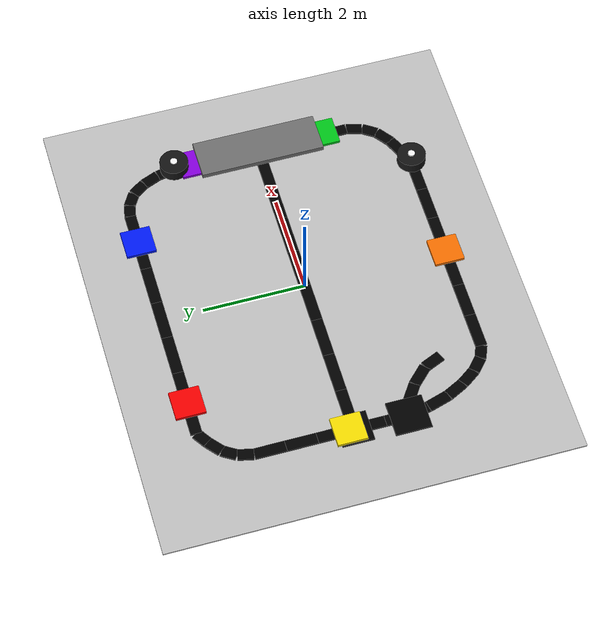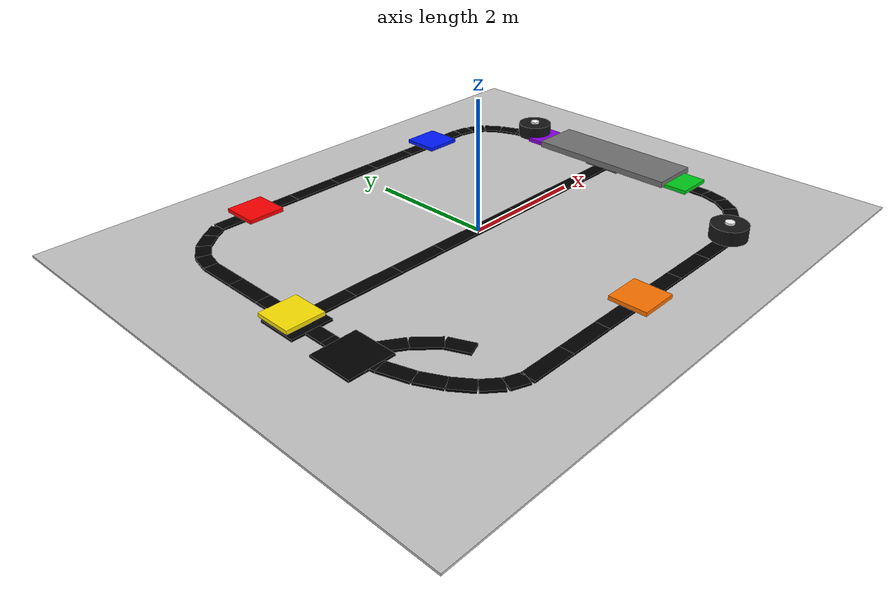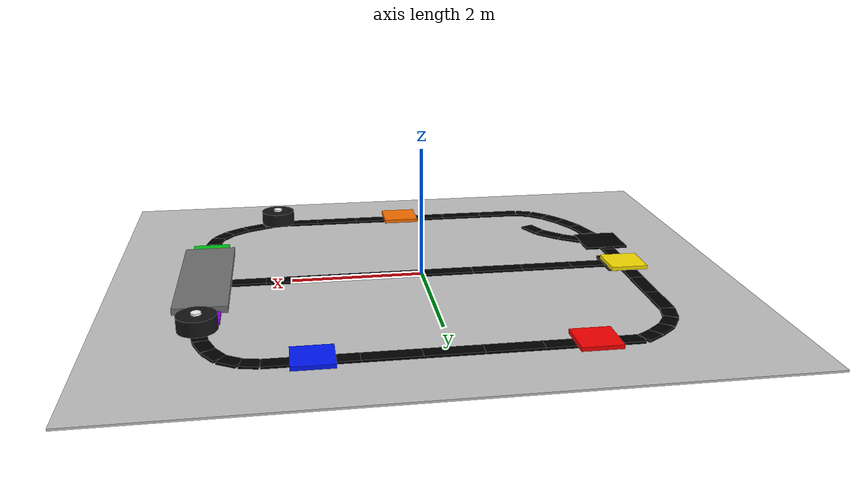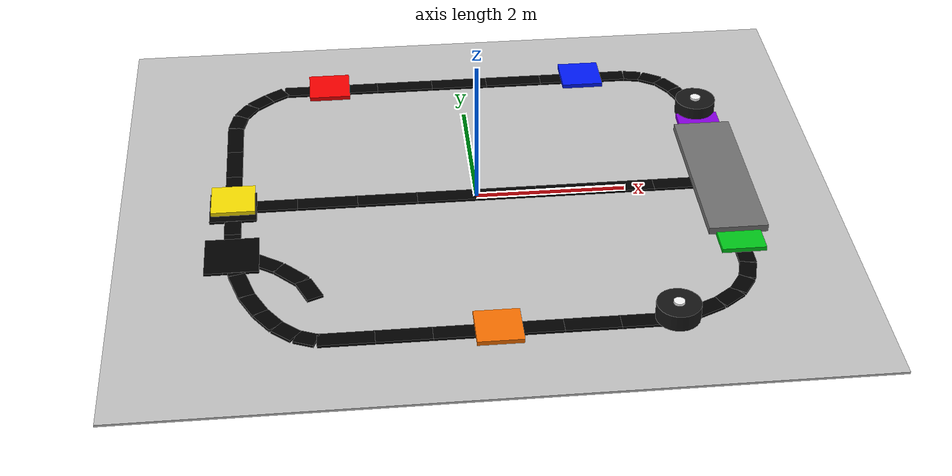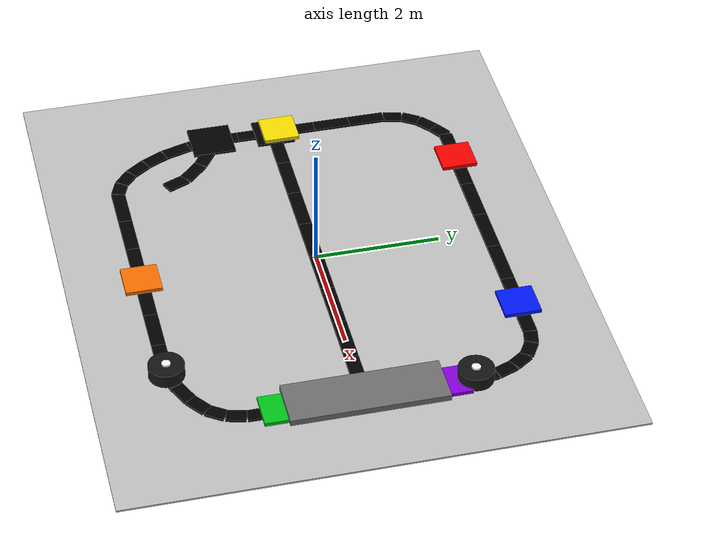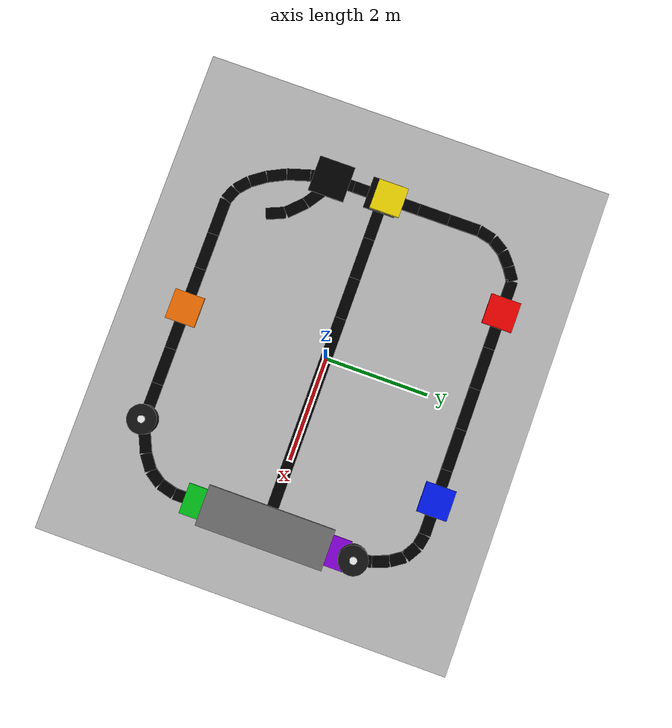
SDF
<?xml version="1.0" ?>
<sdf version="1.6">
  <world name="agv_factory_v3_curve_clean_map">

    <include>
      <uri>model://sun</uri>
    </include>

    <gui fullscreen="0">
      <camera name="user_camera">
        <pose>0 -0.2 10.8 0 1.5708 1.5708</pose>
        <view_controller>orbit</view_controller>
      </camera>
    </gui>

    <model name="factory_floor">
      <static>true</static>
      <pose>0.0000 0.0000 -0.0150 0 0 0.0000</pose>
      <link name="link">
        <collision name="collision">
          <geometry>
            <box>
              <size>9.5000 8.0000 0.0300</size>
            </box>
          </geometry>
        </collision>
        <visual name="visual">
          <geometry>
            <box>
              <size>9.5000 8.0000 0.0300</size>
            </box>
          </geometry>

          <material>
            <ambient>0.78 0.78 0.78 1</ambient>
            <diffuse>0.78 0.78 0.78 1</diffuse>
          </material>
        </visual>
      </link>
    </model>

    <model name="line_top_01">
      <static>true</static>
      <pose>-2.2250 2.8000 0.0175 0 0 0.0000</pose>
      <link name="link">
        <collision name="collision">
          <geometry>
            <box>
              <size>0.6500 0.2200 0.0350</size>
            </box>
          </geometry>
        </collision>
        <visual name="visual">
          <geometry>
            <box>
              <size>0.6500 0.2200 0.0350</size>
            </box>
          </geometry>

          <material>
            <ambient>0 0 0 1</ambient>
            <diffuse>0 0 0 1</diffuse>
          </material>
        </visual>
      </link>
    </model>

    <model name="line_top_02">
      <static>true</static>
      <pose>-1.5500 2.8000 0.0175 0 0 0.0000</pose>
      <link name="link">
        <collision name="collision">
          <geometry>
            <box>
              <size>0.7000 0.2200 0.0350</size>
            </box>
          </geometry>
        </collision>
        <visual name="visual">
          <geometry>
            <box>
              <size>0.7000 0.2200 0.0350</size>
            </box>
          </geometry>

          <material>
            <ambient>0 0 0 1</ambient>
            <diffuse>0 0 0 1</diffuse>
          </material>
        </visual>
      </link>
    </model>

    <model name="line_top_03">
      <static>true</static>
      <pose>-0.8000 2.8000 0.0175 0 0 0.0000</pose>
      <link name="link">
        <collision name="collision">
          <geometry>
            <box>
              <size>0.8000 0.2200 0.0350</size>
            </box>
          </geometry>
        </collision>
        <visual name="visual">
          <geometry>
            <box>
              <size>0.8000 0.2200 0.0350</size>
            </box>
          </geometry>

          <material>
            <ambient>0 0 0 1</ambient>
            <diffuse>0 0 0 1</diffuse>
          </material>
        </visual>
      </link>
    </model>

    <model name="line_top_04">
      <static>true</static>
      <pose>0.0000 2.8000 0.0175 0 0 0.0000</pose>
      <link name="link">
        <collision name="collision">
          <geometry>
            <box>
              <size>0.8000 0.2200 0.0350</size>
            </box>
          </geometry>
        </collision>
        <visual name="visual">
          <geometry>
            <box>
              <size>0.8000 0.2200 0.0350</size>
            </box>
          </geometry>

          <material>
            <ambient>0 0 0 1</ambient>
            <diffuse>0 0 0 1</diffuse>
          </material>
        </visual>
      </link>
    </model>

    <model name="line_top_05">
      <static>true</static>
      <pose>0.8000 2.8000 0.0175 0 0 0.0000</pose>
      <link name="link">
        <collision name="collision">
          <geometry>
            <box>
              <size>0.8000 0.2200 0.0350</size>
            </box>
          </geometry>
        </collision>
        <visual name="visual">
          <geometry>
            <box>
              <size>0.8000 0.2200 0.0350</size>
            </box>
          </geometry>

          <material>
            <ambient>0 0 0 1</ambient>
            <diffuse>0 0 0 1</diffuse>
          </material>
        </visual>
      </link>
    </model>

    <model name="line_top_06">
      <static>true</static>
      <pose>1.5000 2.8000 0.0175 0 0 0.0000</pose>
      <link name="link">
        <collision name="collision">
          <geometry>
            <box>
              <size>0.6000 0.2200 0.0350</size>
            </box>
          </geometry>
        </collision>
        <visual name="visual">
          <geometry>
            <box>
              <size>0.6000 0.2200 0.0350</size>
            </box>
          </geometry>

          <material>
            <ambient>0 0 0 1</ambient>
            <diffuse>0 0 0 1</diffuse>
          </material>
        </visual>
      </link>
    </model>

    <model name="line_top_07">
      <static>true</static>
      <pose>2.1250 2.8000 0.0175 0 0 0.0000</pose>
      <link name="link">
        <collision name="collision">
          <geometry>
            <box>
              <size>0.6500 0.2200 0.0350</size>
            </box>
          </geometry>
        </collision>
        <visual name="visual">
          <geometry>
            <box>
              <size>0.6500 0.2200 0.0350</size>
            </box>
          </geometry>

          <material>
            <ambient>0 0 0 1</ambient>
            <diffuse>0 0 0 1</diffuse>
          </material>
        </visual>
      </link>
    </model>

    <model name="curve_top_right_01">
      <static>true</static>
      <pose>2.5750 2.7750 0.0175 0 0 -0.1974</pose>
      <link name="link">
        <collision name="collision">
          <geometry>
            <box>
              <size>0.2550 0.2200 0.0350</size>
            </box>
          </geometry>
        </collision>
        <visual name="visual">
          <geometry>
            <box>
              <size>0.2550 0.2200 0.0350</size>
            </box>
          </geometry>

          <material>
            <ambient>0 0 0 1</ambient>
            <diffuse>0 0 0 1</diffuse>
          </material>
        </visual>
      </link>
    </model>

    <model name="curve_top_right_02">
      <static>true</static>
      <pose>2.8250 2.6750 0.0175 0 0 -0.5404</pose>
      <link name="link">
        <collision name="collision">
          <geometry>
            <box>
              <size>0.2915 0.2200 0.0350</size>
            </box>
          </geometry>
        </collision>
        <visual name="visual">
          <geometry>
            <box>
              <size>0.2915 0.2200 0.0350</size>
            </box>
          </geometry>

          <material>
            <ambient>0 0 0 1</ambient>
            <diffuse>0 0 0 1</diffuse>
          </material>
        </visual>
      </link>
    </model>

    <model name="curve_top_right_03">
      <static>true</static>
      <pose>3.0350 2.4750 0.0175 0 0 -0.9736</pose>
      <link name="link">
        <collision name="collision">
          <geometry>
            <box>
              <size>0.3023 0.2200 0.0350</size>
            </box>
          </geometry>
        </collision>
        <visual name="visual">
          <geometry>
            <box>
              <size>0.3023 0.2200 0.0350</size>
            </box>
          </geometry>

          <material>
            <ambient>0 0 0 1</ambient>
            <diffuse>0 0 0 1</diffuse>
          </material>
        </visual>
      </link>
    </model>

    <model name="curve_top_right_04">
      <static>true</static>
      <pose>3.1800 2.2000 0.0175 0 0 -1.1903</pose>
      <link name="link">
        <collision name="collision">
          <geometry>
            <box>
              <size>0.3231 0.2200 0.0350</size>
            </box>
          </geometry>
        </collision>
        <visual name="visual">
          <geometry>
            <box>
              <size>0.3231 0.2200 0.0350</size>
            </box>
          </geometry>

          <material>
            <ambient>0 0 0 1</ambient>
            <diffuse>0 0 0 1</diffuse>
          </material>
        </visual>
      </link>
    </model>

    <model name="curve_top_right_05">
      <static>true</static>
      <pose>3.2700 1.8750 0.0175 0 0 -1.4010</pose>
      <link name="link">
        <collision name="collision">
          <geometry>
            <box>
              <size>0.3551 0.2200 0.0350</size>
            </box>
          </geometry>
        </collision>
        <visual name="visual">
          <geometry>
            <box>
              <size>0.3551 0.2200 0.0350</size>
            </box>
          </geometry>

          <material>
            <ambient>0 0 0 1</ambient>
            <diffuse>0 0 0 1</diffuse>
          </material>
        </visual>
      </link>
    </model>

    <model name="line_right_01">
      <static>true</static>
      <pose>3.3000 1.5000 0.0175 0 0 -1.5708</pose>
      <link name="link">
        <collision name="collision">
          <geometry>
            <box>
              <size>0.4000 0.2200 0.0350</size>
            </box>
          </geometry>
        </collision>
        <visual name="visual">
          <geometry>
            <box>
              <size>0.4000 0.2200 0.0350</size>
            </box>
          </geometry>

          <material>
            <ambient>0 0 0 1</ambient>
            <diffuse>0 0 0 1</diffuse>
          </material>
        </visual>
      </link>
    </model>

    <model name="line_right_02">
      <static>true</static>
      <pose>3.3000 1.0500 0.0175 0 0 -1.5708</pose>
      <link name="link">
        <collision name="collision">
          <geometry>
            <box>
              <size>0.5000 0.2200 0.0350</size>
            </box>
          </geometry>
        </collision>
        <visual name="visual">
          <geometry>
            <box>
              <size>0.5000 0.2200 0.0350</size>
            </box>
          </geometry>

          <material>
            <ambient>0 0 0 1</ambient>
            <diffuse>0 0 0 1</diffuse>
          </material>
        </visual>
      </link>
    </model>

    <model name="line_right_03">
      <static>true</static>
      <pose>3.3000 0.5500 0.0175 0 0 -1.5708</pose>
      <link name="link">
        <collision name="collision">
          <geometry>
            <box>
              <size>0.5000 0.2200 0.0350</size>
            </box>
          </geometry>
        </collision>
        <visual name="visual">
          <geometry>
            <box>
              <size>0.5000 0.2200 0.0350</size>
            </box>
          </geometry>

          <material>
            <ambient>0 0 0 1</ambient>
            <diffuse>0 0 0 1</diffuse>
          </material>
        </visual>
      </link>
    </model>

    <model name="line_right_04">
      <static>true</static>
      <pose>3.3000 0.1500 0.0175 0 0 -1.5708</pose>
      <link name="link">
        <collision name="collision">
          <geometry>
            <box>
              <size>0.3000 0.2200 0.0350</size>
            </box>
          </geometry>
        </collision>
        <visual name="visual">
          <geometry>
            <box>
              <size>0.3000 0.2200 0.0350</size>
            </box>
          </geometry>

          <material>
            <ambient>0 0 0 1</ambient>
            <diffuse>0 0 0 1</diffuse>
          </material>
        </visual>
      </link>
    </model>

    <model name="line_right_05">
      <static>true</static>
      <pose>3.3000 -0.1500 0.0175 0 0 -1.5708</pose>
      <link name="link">
        <collision name="collision">
          <geometry>
            <box>
              <size>0.3000 0.2200 0.0350</size>
            </box>
          </geometry>
        </collision>
        <visual name="visual">
          <geometry>
            <box>
              <size>0.3000 0.2200 0.0350</size>
            </box>
          </geometry>

          <material>
            <ambient>0 0 0 1</ambient>
            <diffuse>0 0 0 1</diffuse>
          </material>
        </visual>
      </link>
    </model>

    <model name="line_right_06">
      <static>true</static>
      <pose>3.3000 -0.5500 0.0175 0 0 -1.5708</pose>
      <link name="link">
        <collision name="collision">
          <geometry>
            <box>
              <size>0.5000 0.2200 0.0350</size>
            </box>
          </geometry>
        </collision>
        <visual name="visual">
          <geometry>
            <box>
              <size>0.5000 0.2200 0.0350</size>
            </box>
          </geometry>

          <material>
            <ambient>0 0 0 1</ambient>
            <diffuse>0 0 0 1</diffuse>
          </material>
        </visual>
      </link>
    </model>

    <model name="line_right_07">
      <static>true</static>
      <pose>3.3000 -1.0500 0.0175 0 0 -1.5708</pose>
      <link name="link">
        <collision name="collision">
          <geometry>
            <box>
              <size>0.5000 0.2200 0.0350</size>
            </box>
          </geometry>
        </collision>
        <visual name="visual">
          <geometry>
            <box>
              <size>0.5000 0.2200 0.0350</size>
            </box>
          </geometry>

          <material>
            <ambient>0 0 0 1</ambient>
            <diffuse>0 0 0 1</diffuse>
          </material>
        </visual>
      </link>
    </model>

    <model name="line_right_08">
      <static>true</static>
      <pose>3.3000 -1.5500 0.0175 0 0 -1.5708</pose>
      <link name="link">
        <collision name="collision">
          <geometry>
            <box>
              <size>0.5000 0.2200 0.0350</size>
            </box>
          </geometry>
        </collision>
        <visual name="visual">
          <geometry>
            <box>
              <size>0.5000 0.2200 0.0350</size>
            </box>
          </geometry>

          <material>
            <ambient>0 0 0 1</ambient>
            <diffuse>0 0 0 1</diffuse>
          </material>
        </visual>
      </link>
    </model>

    <model name="curve_bottom_right_01">
      <static>true</static>
      <pose>3.2600 -1.9500 0.0175 0 0 -1.8314</pose>
      <link name="link">
        <collision name="collision">
          <geometry>
            <box>
              <size>0.3105 0.2200 0.0350</size>
            </box>
          </geometry>
        </collision>
        <visual name="visual">
          <geometry>
            <box>
              <size>0.3105 0.2200 0.0350</size>
            </box>
          </geometry>

          <material>
            <ambient>0 0 0 1</ambient>
            <diffuse>0 0 0 1</diffuse>
          </material>
        </visual>
      </link>
    </model>

    <model name="curve_bottom_right_02">
      <static>true</static>
      <pose>3.1350 -2.2250 0.0175 0 0 -2.1680</pose>
      <link name="link">
        <collision name="collision">
          <geometry>
            <box>
              <size>0.3023 0.2200 0.0350</size>
            </box>
          </geometry>
        </collision>
        <visual name="visual">
          <geometry>
            <box>
              <size>0.3023 0.2200 0.0350</size>
            </box>
          </geometry>

          <material>
            <ambient>0 0 0 1</ambient>
            <diffuse>0 0 0 1</diffuse>
          </material>
        </visual>
      </link>
    </model>

    <model name="curve_bottom_right_03">
      <static>true</static>
      <pose>2.9150 -2.4500 0.0175 0 0 -2.5040</pose>
      <link name="link">
        <collision name="collision">
          <geometry>
            <box>
              <size>0.3360 0.2200 0.0350</size>
            </box>
          </geometry>
        </collision>
        <visual name="visual">
          <geometry>
            <box>
              <size>0.3360 0.2200 0.0350</size>
            </box>
          </geometry>

          <material>
            <ambient>0 0 0 1</ambient>
            <diffuse>0 0 0 1</diffuse>
          </material>
        </visual>
      </link>
    </model>

    <model name="curve_bottom_right_04">
      <static>true</static>
      <pose>2.6150 -2.6250 0.0175 0 0 -2.7150</pose>
      <link name="link">
        <collision name="collision">
          <geometry>
            <box>
              <size>0.3625 0.2200 0.0350</size>
            </box>
          </geometry>
        </collision>
        <visual name="visual">
          <geometry>
            <box>
              <size>0.3625 0.2200 0.0350</size>
            </box>
          </geometry>

          <material>
            <ambient>0 0 0 1</ambient>
            <diffuse>0 0 0 1</diffuse>
          </material>
        </visual>
      </link>
    </model>

    <model name="curve_bottom_right_05">
      <static>true</static>
      <pose>2.3250 -2.7500 0.0175 0 0 -2.7611</pose>
      <link name="link">
        <collision name="collision">
          <geometry>
            <box>
              <size>0.2693 0.2200 0.0350</size>
            </box>
          </geometry>
        </collision>
        <visual name="visual">
          <geometry>
            <box>
              <size>0.2693 0.2200 0.0350</size>
            </box>
          </geometry>

          <material>
            <ambient>0 0 0 1</ambient>
            <diffuse>0 0 0 1</diffuse>
          </material>
        </visual>
      </link>
    </model>

    <model name="line_bottom_01">
      <static>true</static>
      <pose>1.8500 -2.8000 0.0175 0 0 3.1416</pose>
      <link name="link">
        <collision name="collision">
          <geometry>
            <box>
              <size>0.7000 0.2200 0.0350</size>
            </box>
          </geometry>
        </collision>
        <visual name="visual">
          <geometry>
            <box>
              <size>0.7000 0.2200 0.0350</size>
            </box>
          </geometry>

          <material>
            <ambient>0 0 0 1</ambient>
            <diffuse>0 0 0 1</diffuse>
          </material>
        </visual>
      </link>
    </model>

    <model name="line_bottom_02">
      <static>true</static>
      <pose>1.1500 -2.8000 0.0175 0 0 3.1416</pose>
      <link name="link">
        <collision name="collision">
          <geometry>
            <box>
              <size>0.7000 0.2200 0.0350</size>
            </box>
          </geometry>
        </collision>
        <visual name="visual">
          <geometry>
            <box>
              <size>0.7000 0.2200 0.0350</size>
            </box>
          </geometry>

          <material>
            <ambient>0 0 0 1</ambient>
            <diffuse>0 0 0 1</diffuse>
          </material>
        </visual>
      </link>
    </model>

    <model name="line_bottom_03">
      <static>true</static>
      <pose>0.4000 -2.8000 0.0175 0 0 3.1416</pose>
      <link name="link">
        <collision name="collision">
          <geometry>
            <box>
              <size>0.8000 0.2200 0.0350</size>
            </box>
          </geometry>
        </collision>
        <visual name="visual">
          <geometry>
            <box>
              <size>0.8000 0.2200 0.0350</size>
            </box>
          </geometry>

          <material>
            <ambient>0 0 0 1</ambient>
            <diffuse>0 0 0 1</diffuse>
          </material>
        </visual>
      </link>
    </model>

    <model name="line_bottom_04">
      <static>true</static>
      <pose>-0.4000 -2.8000 0.0175 0 0 3.1416</pose>
      <link name="link">
        <collision name="collision">
          <geometry>
            <box>
              <size>0.8000 0.2200 0.0350</size>
            </box>
          </geometry>
        </collision>
        <visual name="visual">
          <geometry>
            <box>
              <size>0.8000 0.2200 0.0350</size>
            </box>
          </geometry>

          <material>
            <ambient>0 0 0 1</ambient>
            <diffuse>0 0 0 1</diffuse>
          </material>
        </visual>
      </link>
    </model>

    <model name="line_bottom_05">
      <static>true</static>
      <pose>-1.1500 -2.8000 0.0175 0 0 3.1416</pose>
      <link name="link">
        <collision name="collision">
          <geometry>
            <box>
              <size>0.7000 0.2200 0.0350</size>
            </box>
          </geometry>
        </collision>
        <visual name="visual">
          <geometry>
            <box>
              <size>0.7000 0.2200 0.0350</size>
            </box>
          </geometry>

          <material>
            <ambient>0 0 0 1</ambient>
            <diffuse>0 0 0 1</diffuse>
          </material>
        </visual>
      </link>
    </model>

    <model name="line_bottom_06">
      <static>true</static>
      <pose>-1.8500 -2.8000 0.0175 0 0 3.1416</pose>
      <link name="link">
        <collision name="collision">
          <geometry>
            <box>
              <size>0.7000 0.2200 0.0350</size>
            </box>
          </geometry>
        </collision>
        <visual name="visual">
          <geometry>
            <box>
              <size>0.7000 0.2200 0.0350</size>
            </box>
          </geometry>

          <material>
            <ambient>0 0 0 1</ambient>
            <diffuse>0 0 0 1</diffuse>
          </material>
        </visual>
      </link>
    </model>

    <model name="curve_bottom_left_01">
      <static>true</static>
      <pose>-2.3250 -2.7500 0.0175 0 0 2.7611</pose>
      <link name="link">
        <collision name="collision">
          <geometry>
            <box>
              <size>0.2693 0.2200 0.0350</size>
            </box>
          </geometry>
        </collision>
        <visual name="visual">
          <geometry>
            <box>
              <size>0.2693 0.2200 0.0350</size>
            </box>
          </geometry>

          <material>
            <ambient>0 0 0 1</ambient>
            <diffuse>0 0 0 1</diffuse>
          </material>
        </visual>
      </link>
    </model>

    <model name="curve_bottom_left_02">
      <static>true</static>
      <pose>-2.5650 -2.6000 0.0175 0 0 2.4258</pose>
      <link name="link">
        <collision name="collision">
          <geometry>
            <box>
              <size>0.3048 0.2200 0.0350</size>
            </box>
          </geometry>
        </collision>
        <visual name="visual">
          <geometry>
            <box>
              <size>0.3048 0.2200 0.0350</size>
            </box>
          </geometry>

          <material>
            <ambient>0 0 0 1</ambient>
            <diffuse>0 0 0 1</diffuse>
          </material>
        </visual>
      </link>
    </model>

    <model name="curve_bottom_left_03">
      <static>true</static>
      <pose>-2.7800 -2.3600 0.0175 0 0 2.1910</pose>
      <link name="link">
        <collision name="collision">
          <geometry>
            <box>
              <size>0.3441 0.2200 0.0350</size>
            </box>
          </geometry>
        </collision>
        <visual name="visual">
          <geometry>
            <box>
              <size>0.3441 0.2200 0.0350</size>
            </box>
          </geometry>

          <material>
            <ambient>0 0 0 1</ambient>
            <diffuse>0 0 0 1</diffuse>
          </material>
        </visual>
      </link>
    </model>

    <model name="curve_bottom_left_04">
      <static>true</static>
      <pose>-2.9650 -2.0500 0.0175 0 0 2.0344</pose>
      <link name="link">
        <collision name="collision">
          <geometry>
            <box>
              <size>0.3801 0.2200 0.0350</size>
            </box>
          </geometry>
        </collision>
        <visual name="visual">
          <geometry>
            <box>
              <size>0.3801 0.2200 0.0350</size>
            </box>
          </geometry>

          <material>
            <ambient>0 0 0 1</ambient>
            <diffuse>0 0 0 1</diffuse>
          </material>
        </visual>
      </link>
    </model>

    <model name="curve_bottom_left_05">
      <static>true</static>
      <pose>-3.1150 -1.6650 0.0175 0 0 1.8644</pose>
      <link name="link">
        <collision name="collision">
          <geometry>
            <box>
              <size>0.4492 0.2200 0.0350</size>
            </box>
          </geometry>
        </collision>
        <visual name="visual">
          <geometry>
            <box>
              <size>0.4492 0.2200 0.0350</size>
            </box>
          </geometry>

          <material>
            <ambient>0 0 0 1</ambient>
            <diffuse>0 0 0 1</diffuse>
          </material>
        </visual>
      </link>
    </model>

    <model name="curve_bottom_left_06">
      <static>true</static>
      <pose>-3.2150 -1.2500 0.0175 0 0 1.7440</pose>
      <link name="link">
        <collision name="collision">
          <geometry>
            <box>
              <size>0.4061 0.2200 0.0350</size>
            </box>
          </geometry>
        </collision>
        <visual name="visual">
          <geometry>
            <box>
              <size>0.4061 0.2200 0.0350</size>
            </box>
          </geometry>

          <material>
            <ambient>0 0 0 1</ambient>
            <diffuse>0 0 0 1</diffuse>
          </material>
        </visual>
      </link>
    </model>

    <model name="line_left_01">
      <static>true</static>
      <pose>-3.2500 -0.8250 0.0175 0 0 1.5708</pose>
      <link name="link">
        <collision name="collision">
          <geometry>
            <box>
              <size>0.4500 0.2200 0.0350</size>
            </box>
          </geometry>
        </collision>
        <visual name="visual">
          <geometry>
            <box>
              <size>0.4500 0.2200 0.0350</size>
            </box>
          </geometry>

          <material>
            <ambient>0 0 0 1</ambient>
            <diffuse>0 0 0 1</diffuse>
          </material>
        </visual>
      </link>
    </model>

    <model name="line_left_02">
      <static>true</static>
      <pose>-3.2500 -0.3000 0.0175 0 0 1.5708</pose>
      <link name="link">
        <collision name="collision">
          <geometry>
            <box>
              <size>0.6000 0.2200 0.0350</size>
            </box>
          </geometry>
        </collision>
        <visual name="visual">
          <geometry>
            <box>
              <size>0.6000 0.2200 0.0350</size>
            </box>
          </geometry>

          <material>
            <ambient>0 0 0 1</ambient>
            <diffuse>0 0 0 1</diffuse>
          </material>
        </visual>
      </link>
    </model>

    <model name="line_left_03">
      <static>true</static>
      <pose>-3.2500 0.0500 0.0175 0 0 1.5708</pose>
      <link name="link">
        <collision name="collision">
          <geometry>
            <box>
              <size>0.1000 0.2200 0.0350</size>
            </box>
          </geometry>
        </collision>
        <visual name="visual">
          <geometry>
            <box>
              <size>0.1000 0.2200 0.0350</size>
            </box>
          </geometry>

          <material>
            <ambient>0 0 0 1</ambient>
            <diffuse>0 0 0 1</diffuse>
          </material>
        </visual>
      </link>
    </model>

    <model name="line_left_04">
      <static>true</static>
      <pose>-3.2500 0.4000 0.0175 0 0 1.5708</pose>
      <link name="link">
        <collision name="collision">
          <geometry>
            <box>
              <size>0.6000 0.2200 0.0350</size>
            </box>
          </geometry>
        </collision>
        <visual name="visual">
          <geometry>
            <box>
              <size>0.6000 0.2200 0.0350</size>
            </box>
          </geometry>

          <material>
            <ambient>0 0 0 1</ambient>
            <diffuse>0 0 0 1</diffuse>
          </material>
        </visual>
      </link>
    </model>

    <model name="line_left_05">
      <static>true</static>
      <pose>-3.2500 1.0000 0.0175 0 0 1.5708</pose>
      <link name="link">
        <collision name="collision">
          <geometry>
            <box>
              <size>0.6000 0.2200 0.0350</size>
            </box>
          </geometry>
        </collision>
        <visual name="visual">
          <geometry>
            <box>
              <size>0.6000 0.2200 0.0350</size>
            </box>
          </geometry>

          <material>
            <ambient>0 0 0 1</ambient>
            <diffuse>0 0 0 1</diffuse>
          </material>
        </visual>
      </link>
    </model>

    <model name="line_left_06">
      <static>true</static>
      <pose>-3.2500 1.6000 0.0175 0 0 1.5708</pose>
      <link name="link">
        <collision name="collision">
          <geometry>
            <box>
              <size>0.6000 0.2200 0.0350</size>
            </box>
          </geometry>
        </collision>
        <visual name="visual">
          <geometry>
            <box>
              <size>0.6000 0.2200 0.0350</size>
            </box>
          </geometry>

          <material>
            <ambient>0 0 0 1</ambient>
            <diffuse>0 0 0 1</diffuse>
          </material>
        </visual>
      </link>
    </model>

    <model name="curve_top_left_01">
      <static>true</static>
      <pose>-3.2150 2.0500 0.0175 0 0 1.3416</pose>
      <link name="link">
        <collision name="collision">
          <geometry>
            <box>
              <size>0.3081 0.2200 0.0350</size>
            </box>
          </geometry>
        </collision>
        <visual name="visual">
          <geometry>
            <box>
              <size>0.3081 0.2200 0.0350</size>
            </box>
          </geometry>

          <material>
            <ambient>0 0 0 1</ambient>
            <diffuse>0 0 0 1</diffuse>
          </material>
        </visual>
      </link>
    </model>

    <model name="curve_top_left_02">
      <static>true</static>
      <pose>-3.1000 2.3250 0.0175 0 0 1.0015</pose>
      <link name="link">
        <collision name="collision">
          <geometry>
            <box>
              <size>0.2968 0.2200 0.0350</size>
            </box>
          </geometry>
        </collision>
        <visual name="visual">
          <geometry>
            <box>
              <size>0.2968 0.2200 0.0350</size>
            </box>
          </geometry>

          <material>
            <ambient>0 0 0 1</ambient>
            <diffuse>0 0 0 1</diffuse>
          </material>
        </visual>
      </link>
    </model>

    <model name="curve_top_left_03">
      <static>true</static>
      <pose>-2.9000 2.5500 0.0175 0 0 0.6947</pose>
      <link name="link">
        <collision name="collision">
          <geometry>
            <box>
              <size>0.3124 0.2200 0.0350</size>
            </box>
          </geometry>
        </collision>
        <visual name="visual">
          <geometry>
            <box>
              <size>0.3124 0.2200 0.0350</size>
            </box>
          </geometry>

          <material>
            <ambient>0 0 0 1</ambient>
            <diffuse>0 0 0 1</diffuse>
          </material>
        </visual>
      </link>
    </model>

    <model name="curve_top_left_04">
      <static>true</static>
      <pose>-2.6650 2.7250 0.0175 0 0 0.5779</pose>
      <link name="link">
        <collision name="collision">
          <geometry>
            <box>
              <size>0.2746 0.2200 0.0350</size>
            </box>
          </geometry>
        </collision>
        <visual name="visual">
          <geometry>
            <box>
              <size>0.2746 0.2200 0.0350</size>
            </box>
          </geometry>

          <material>
            <ambient>0 0 0 1</ambient>
            <diffuse>0 0 0 1</diffuse>
          </material>
        </visual>
      </link>
    </model>

    <model name="line_center_cross_01">
      <static>true</static>
      <pose>-2.8250 0.0000 0.0175 0 0 0.0000</pose>
      <link name="link">
        <collision name="collision">
          <geometry>
            <box>
              <size>0.8500 0.2200 0.0350</size>
            </box>
          </geometry>
        </collision>
        <visual name="visual">
          <geometry>
            <box>
              <size>0.8500 0.2200 0.0350</size>
            </box>
          </geometry>

          <material>
            <ambient>0 0 0 1</ambient>
            <diffuse>0 0 0 1</diffuse>
          </material>
        </visual>
      </link>
    </model>

    <model name="line_center_cross_02">
      <static>true</static>
      <pose>-2.0000 0.0000 0.0175 0 0 0.0000</pose>
      <link name="link">
        <collision name="collision">
          <geometry>
            <box>
              <size>0.8000 0.2200 0.0350</size>
            </box>
          </geometry>
        </collision>
        <visual name="visual">
          <geometry>
            <box>
              <size>0.8000 0.2200 0.0350</size>
            </box>
          </geometry>

          <material>
            <ambient>0 0 0 1</ambient>
            <diffuse>0 0 0 1</diffuse>
          </material>
        </visual>
      </link>
    </model>

    <model name="line_center_cross_03">
      <static>true</static>
      <pose>-1.2000 0.0000 0.0175 0 0 0.0000</pose>
      <link name="link">
        <collision name="collision">
          <geometry>
            <box>
              <size>0.8000 0.2200 0.0350</size>
            </box>
          </geometry>
        </collision>
        <visual name="visual">
          <geometry>
            <box>
              <size>0.8000 0.2200 0.0350</size>
            </box>
          </geometry>

          <material>
            <ambient>0 0 0 1</ambient>
            <diffuse>0 0 0 1</diffuse>
          </material>
        </visual>
      </link>
    </model>

    <model name="line_center_cross_04">
      <static>true</static>
      <pose>-0.4000 0.0000 0.0175 0 0 0.0000</pose>
      <link name="link">
        <collision name="collision">
          <geometry>
            <box>
              <size>0.8000 0.2200 0.0350</size>
            </box>
          </geometry>
        </collision>
        <visual name="visual">
          <geometry>
            <box>
              <size>0.8000 0.2200 0.0350</size>
            </box>
          </geometry>

          <material>
            <ambient>0 0 0 1</ambient>
            <diffuse>0 0 0 1</diffuse>
          </material>
        </visual>
      </link>
    </model>

    <model name="line_center_cross_05">
      <static>true</static>
      <pose>0.4000 0.0000 0.0175 0 0 0.0000</pose>
      <link name="link">
        <collision name="collision">
          <geometry>
            <box>
              <size>0.8000 0.2200 0.0350</size>
            </box>
          </geometry>
        </collision>
        <visual name="visual">
          <geometry>
            <box>
              <size>0.8000 0.2200 0.0350</size>
            </box>
          </geometry>

          <material>
            <ambient>0 0 0 1</ambient>
            <diffuse>0 0 0 1</diffuse>
          </material>
        </visual>
      </link>
    </model>

    <model name="line_center_cross_06">
      <static>true</static>
      <pose>1.2000 0.0000 0.0175 0 0 0.0000</pose>
      <link name="link">
        <collision name="collision">
          <geometry>
            <box>
              <size>0.8000 0.2200 0.0350</size>
            </box>
          </geometry>
        </collision>
        <visual name="visual">
          <geometry>
            <box>
              <size>0.8000 0.2200 0.0350</size>
            </box>
          </geometry>

          <material>
            <ambient>0 0 0 1</ambient>
            <diffuse>0 0 0 1</diffuse>
          </material>
        </visual>
      </link>
    </model>

    <model name="line_center_cross_07">
      <static>true</static>
      <pose>2.0000 0.0000 0.0175 0 0 0.0000</pose>
      <link name="link">
        <collision name="collision">
          <geometry>
            <box>
              <size>0.8000 0.2200 0.0350</size>
            </box>
          </geometry>
        </collision>
        <visual name="visual">
          <geometry>
            <box>
              <size>0.8000 0.2200 0.0350</size>
            </box>
          </geometry>

          <material>
            <ambient>0 0 0 1</ambient>
            <diffuse>0 0 0 1</diffuse>
          </material>
        </visual>
      </link>
    </model>

    <model name="line_center_cross_08">
      <static>true</static>
      <pose>2.8500 0.0000 0.0175 0 0 0.0000</pose>
      <link name="link">
        <collision name="collision">
          <geometry>
            <box>
              <size>0.9000 0.2200 0.0350</size>
            </box>
          </geometry>
        </collision>
        <visual name="visual">
          <geometry>
            <box>
              <size>0.9000 0.2200 0.0350</size>
            </box>
          </geometry>

          <material>
            <ambient>0 0 0 1</ambient>
            <diffuse>0 0 0 1</diffuse>
          </material>
        </visual>
      </link>
    </model>

    <model name="left_lower_intersection_vertical_01">
      <static>true</static>
      <pose>-3.2500 -1.2250 0.0175 0 0 1.5708</pose>
      <link name="link">
        <collision name="collision">
          <geometry>
            <box>
              <size>0.3500 0.2200 0.0350</size>
            </box>
          </geometry>
        </collision>
        <visual name="visual">
          <geometry>
            <box>
              <size>0.3500 0.2200 0.0350</size>
            </box>
          </geometry>

          <material>
            <ambient>0 0 0 1</ambient>
            <diffuse>0 0 0 1</diffuse>
          </material>
        </visual>
      </link>
    </model>

    <model name="left_lower_intersection_vertical_02">
      <static>true</static>
      <pose>-3.2500 -0.8750 0.0175 0 0 1.5708</pose>
      <link name="link">
        <collision name="collision">
          <geometry>
            <box>
              <size>0.3500 0.2200 0.0350</size>
            </box>
          </geometry>
        </collision>
        <visual name="visual">
          <geometry>
            <box>
              <size>0.3500 0.2200 0.0350</size>
            </box>
          </geometry>

          <material>
            <ambient>0 0 0 1</ambient>
            <diffuse>0 0 0 1</diffuse>
          </material>
        </visual>
      </link>
    </model>

    <model name="left_lower_intersection_branch_01">
      <static>true</static>
      <pose>-3.1000 -1.1000 0.0175 0 0 -0.3218</pose>
      <link name="link">
        <collision name="collision">
          <geometry>
            <box>
              <size>0.3162 0.2200 0.0350</size>
            </box>
          </geometry>
        </collision>
        <visual name="visual">
          <geometry>
            <box>
              <size>0.3162 0.2200 0.0350</size>
            </box>
          </geometry>

          <material>
            <ambient>0 0 0 1</ambient>
            <diffuse>0 0 0 1</diffuse>
          </material>
        </visual>
      </link>
    </model>

    <model name="left_lower_intersection_branch_02">
      <static>true</static>
      <pose>-2.8000 -1.2500 0.0175 0 0 -0.5880</pose>
      <link name="link">
        <collision name="collision">
          <geometry>
            <box>
              <size>0.3606 0.2200 0.0350</size>
            </box>
          </geometry>
        </collision>
        <visual name="visual">
          <geometry>
            <box>
              <size>0.3606 0.2200 0.0350</size>
            </box>
          </geometry>

          <material>
            <ambient>0 0 0 1</ambient>
            <diffuse>0 0 0 1</diffuse>
          </material>
        </visual>
      </link>
    </model>

    <model name="left_lower_intersection_branch_03">
      <static>true</static>
      <pose>-2.5000 -1.5000 0.0175 0 0 -0.7854</pose>
      <link name="link">
        <collision name="collision">
          <geometry>
            <box>
              <size>0.4243 0.2200 0.0350</size>
            </box>
          </geometry>
        </collision>
        <visual name="visual">
          <geometry>
            <box>
              <size>0.4243 0.2200 0.0350</size>
            </box>
          </geometry>

          <material>
            <ambient>0 0 0 1</ambient>
            <diffuse>0 0 0 1</diffuse>
          </material>
        </visual>
      </link>
    </model>

    <model name="left_lower_intersection_branch_04">
      <static>true</static>
      <pose>-2.2750 -1.8250 0.0175 0 0 -1.1659</pose>
      <link name="link">
        <collision name="collision">
          <geometry>
            <box>
              <size>0.3808 0.2200 0.0350</size>
            </box>
          </geometry>
        </collision>
        <visual name="visual">
          <geometry>
            <box>
              <size>0.3808 0.2200 0.0350</size>
            </box>
          </geometry>

          <material>
            <ambient>0 0 0 1</ambient>
            <diffuse>0 0 0 1</diffuse>
          </material>
        </visual>
      </link>
    </model>

    <model name="intersection_left_center">
      <static>true</static>
      <pose>-3.2500 0.0000 0.0195 0 0 0.0000</pose>
      <link name="link">
        <collision name="collision">
          <geometry>
            <box>
              <size>0.6200 0.6200 0.0350</size>
            </box>
          </geometry>
        </collision>
        <visual name="visual">
          <geometry>
            <box>
              <size>0.6200 0.6200 0.0350</size>
            </box>
          </geometry>

          <material>
            <ambient>0.0 0.0 0.0 1</ambient>
            <diffuse>0.0 0.0 0.0 1</diffuse>
          </material>
        </visual>
      </link>
    </model>

    <model name="intersection_right_center">
      <static>true</static>
      <pose>3.3000 0.0000 0.0195 0 0 0.0000</pose>
      <link name="link">
        <collision name="collision">
          <geometry>
            <box>
              <size>0.6200 0.6200 0.0350</size>
            </box>
          </geometry>
        </collision>
        <visual name="visual">
          <geometry>
            <box>
              <size>0.6200 0.6200 0.0350</size>
            </box>
          </geometry>

          <material>
            <ambient>0.0 0.0 0.0 1</ambient>
            <diffuse>0.0 0.0 0.0 1</diffuse>
          </material>
        </visual>
      </link>
    </model>

    <model name="intersection_left_lower">
      <static>true</static>
      <pose>-3.2500 -1.0500 0.0195 0 0 0.0000</pose>
      <link name="link">
        <collision name="collision">
          <geometry>
            <box>
              <size>0.7000 0.7000 0.0350</size>
            </box>
          </geometry>
        </collision>
        <visual name="visual">
          <geometry>
            <box>
              <size>0.7000 0.7000 0.0350</size>
            </box>
          </geometry>

          <material>
            <ambient>0.0 0.0 0.0 1</ambient>
            <diffuse>0.0 0.0 0.0 1</diffuse>
          </material>
        </visual>
      </link>
    </model>

    <model name="red_square">
      <static>true</static>
      <pose>-1.9000 2.8000 0.0650 0 0 0.0000</pose>
      <link name="link">
        <collision name="collision">
          <geometry>
            <box>
              <size>0.5800 0.5800 0.0600</size>
            </box>
          </geometry>
        </collision>
        <visual name="visual">
          <geometry>
            <box>
              <size>0.5800 0.5800 0.0600</size>
            </box>
          </geometry>

          <material>
            <ambient>1.0 0.0 0.0 1</ambient>
            <diffuse>1.0 0.0 0.0 1</diffuse>
          </material>
        </visual>
      </link>
    </model>

    <model name="blue_square">
      <static>true</static>
      <pose>1.8000 2.8000 0.0650 0 0 0.0000</pose>
      <link name="link">
        <collision name="collision">
          <geometry>
            <box>
              <size>0.5800 0.5800 0.0600</size>
            </box>
          </geometry>
        </collision>
        <visual name="visual">
          <geometry>
            <box>
              <size>0.5800 0.5800 0.0600</size>
            </box>
          </geometry>

          <material>
            <ambient>0.0 0.1 1.0 1</ambient>
            <diffuse>0.0 0.1 1.0 1</diffuse>
          </material>
        </visual>
      </link>
    </model>

    <model name="yellow_square">
      <static>true</static>
      <pose>-3.2500 0.1000 0.0650 0 0 0.0000</pose>
      <link name="link">
        <collision name="collision">
          <geometry>
            <box>
              <size>0.5800 0.5800 0.0600</size>
            </box>
          </geometry>
        </collision>
        <visual name="visual">
          <geometry>
            <box>
              <size>0.5800 0.5800 0.0600</size>
            </box>
          </geometry>

          <material>
            <ambient>1.0 0.9 0.0 1</ambient>
            <diffuse>1.0 0.9 0.0 1</diffuse>
          </material>
        </visual>
      </link>
    </model>

    <model name="orange_square">
      <static>true</static>
      <pose>0.0000 -2.8000 0.0650 0 0 0.0000</pose>
      <link name="link">
        <collision name="collision">
          <geometry>
            <box>
              <size>0.5800 0.5800 0.0600</size>
            </box>
          </geometry>
        </collision>
        <visual name="visual">
          <geometry>
            <box>
              <size>0.5800 0.5800 0.0600</size>
            </box>
          </geometry>

          <material>
            <ambient>1.0 0.45 0.0 1</ambient>
            <diffuse>1.0 0.45 0.0 1</diffuse>
          </material>
        </visual>
      </link>
    </model>

    <model name="purple_square">
      <static>true</static>
      <pose>3.3000 1.3000 0.0650 0 0 0.0000</pose>
      <link name="link">
        <collision name="collision">
          <geometry>
            <box>
              <size>0.5800 0.5800 0.0600</size>
            </box>
          </geometry>
        </collision>
        <visual name="visual">
          <geometry>
            <box>
              <size>0.5800 0.5800 0.0600</size>
            </box>
          </geometry>

          <material>
            <ambient>0.55 0.0 0.9 1</ambient>
            <diffuse>0.55 0.0 0.9 1</diffuse>
          </material>
        </visual>
      </link>
    </model>

    <model name="green_square">
      <static>true</static>
      <pose>3.3000 -1.3000 0.0650 0 0 0.0000</pose>
      <link name="link">
        <collision name="collision">
          <geometry>
            <box>
              <size>0.5800 0.5800 0.0600</size>
            </box>
          </geometry>
        </collision>
        <visual name="visual">
          <geometry>
            <box>
              <size>0.5800 0.5800 0.0600</size>
            </box>
          </geometry>

          <material>
            <ambient>0.0 0.8 0.1 1</ambient>
            <diffuse>0.0 0.8 0.1 1</diffuse>
          </material>
        </visual>
      </link>
    </model>

    <model name="container_area">
      <static>true</static>
      <pose>3.3000 0.0000 0.1150 0 0 0.0000</pose>
      <link name="link">
        <collision name="collision">
          <geometry>
            <box>
              <size>0.7800 2.4500 0.1000</size>
            </box>
          </geometry>
        </collision>
        <visual name="visual">
          <geometry>
            <box>
              <size>0.7800 2.4500 0.1000</size>
            </box>
          </geometry>

          <material>
            <ambient>0.45 0.45 0.45 1</ambient>
            <diffuse>0.45 0.45 0.45 1</diffuse>
          </material>
        </visual>
      </link>
    </model>

    <model name="AGV01">
      <static>false</static>
      <pose>2.2000 -2.8000 0.1600 0 0 0</pose>
      <link name="link">
        <collision name="collision">
          <geometry>
            <cylinder>
              <radius>0.2800</radius>
              <length>0.2200</length>
            </cylinder>
          </geometry>
        </collision>
        <visual name="visual">
          <geometry>
            <cylinder>
              <radius>0.2800</radius>
              <length>0.2200</length>
            </cylinder>
          </geometry>

          <material>
            <ambient>0.08 0.08 0.08 1</ambient>
            <diffuse>0.08 0.08 0.08 1</diffuse>
          </material>
        </visual>
      </link>
    </model>

    <model name="AGV02">
      <static>false</static>
      <pose>3.3000 1.7000 0.1600 0 0 0</pose>
      <link name="link">
        <collision name="collision">
          <geometry>
            <cylinder>
              <radius>0.2800</radius>
              <length>0.2200</length>
            </cylinder>
          </geometry>
        </collision>
        <visual name="visual">
          <geometry>
            <cylinder>
              <radius>0.2800</radius>
              <length>0.2200</length>
            </cylinder>
          </geometry>

          <material>
            <ambient>0.08 0.08 0.08 1</ambient>
            <diffuse>0.08 0.08 0.08 1</diffuse>
          </material>
        </visual>
      </link>
    </model>

    <model name="AGV01_center_dot">
      <static>false</static>
      <pose>2.2000 -2.8000 0.2850 0 0 0</pose>
      <link name="link">
        <collision name="collision">
          <geometry>
            <cylinder>
              <radius>0.0700</radius>
              <length>0.0300</length>
            </cylinder>
          </geometry>
        </collision>
        <visual name="visual">
          <geometry>
            <cylinder>
              <radius>0.0700</radius>
              <length>0.0300</length>
            </cylinder>
          </geometry>

          <material>
            <ambient>1.0 1.0 1.0 1</ambient>
            <diffuse>1.0 1.0 1.0 1</diffuse>
          </material>
        </visual>
      </link>
    </model>

    <model name="AGV02_center_dot">
      <static>false</static>
      <pose>3.3000 1.7000 0.2850 0 0 0</pose>
      <link name="link">
        <collision name="collision">
          <geometry>
            <cylinder>
              <radius>0.0700</radius>
              <length>0.0300</length>
            </cylinder>
          </geometry>
        </collision>
        <visual name="visual">
          <geometry>
            <cylinder>
              <radius>0.0700</radius>
              <length>0.0300</length>
            </cylinder>
          </geometry>

          <material>
            <ambient>1.0 1.0 1.0 1</ambient>
            <diffuse>1.0 1.0 1.0 1</diffuse>
          </material>
        </visual>
      </link>
    </model>

  </world>
</sdf>
